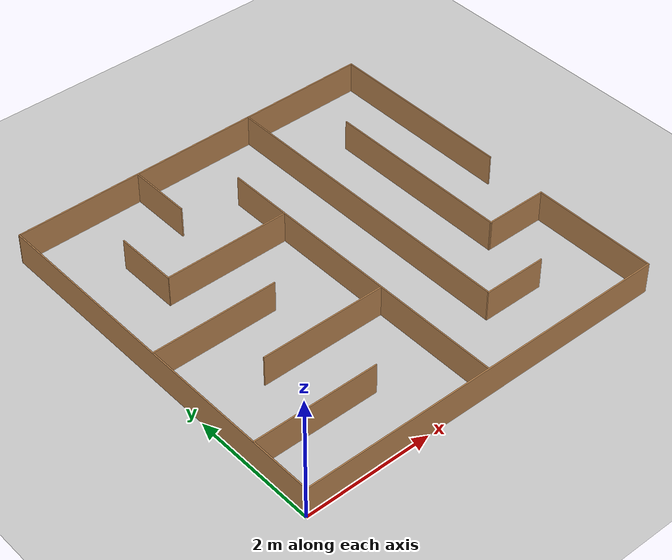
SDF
<sdf version="1.6">
 <world name="default">
  <light name="sun" type="directional">
   <pose>0 0 10 0 -0 0</pose>
   <diffuse>0.8 0.8 0.8 1</diffuse>
   <specular>0.2 0.2 0.2 1</specular>
   <attenuation>
    <range>1000</range>
    <constant>0.9</constant>
    <linear>0.01</linear>
    <quadratic>0.001</quadratic>
   </attenuation>
   <direction>-0.5 0.1 -0.9</direction>
  </light>
  <model name="ground_plane">
   <static>1</static>
   <link name="link">
    <collision name="collision">
     <geometry><plane><normal>0 0 1</normal><size>100 100</size></plane></geometry>
     <surface>
      <contact><collide_bitmask>65535</collide_bitmask></contact>
      <friction><ode><mu>100</mu><mu2>50</mu2></ode></friction>
     </surface>
    </collision>
    <visual name="visual">
     <cast_shadows>0</cast_shadows>
     <geometry><plane><normal>0 0 1</normal><size>100 100</size></plane></geometry>
     <material>
      <script><uri>file://media/materials/scripts/gazebo.material</uri><name>Gazebo/Grey</name></script>
     </material>
    </visual>
   </link>
  </model>
  <gravity>0 0 -9.8</gravity>
  <magnetic_field>6e-06 2.3e-05 -4.2e-05</magnetic_field>
  <atmosphere type="adiabatic"/>
  <physics name="default_physics" default="0" type="ode">
   <max_step_size>0.001</max_step_size>
   <real_time_factor>1</real_time_factor>
   <real_time_update_rate>1000</real_time_update_rate>
  </physics>
  <scene><ambient>0.4 0.4 0.4 1</ambient><background>0.7 0.7 0.7 1</background><shadows>1</shadows></scene>
  <audio><device>default</device></audio>
  <spherical_coordinates>
   <surface_model>EARTH_WGS84</surface_model>
   <latitude_deg>0</latitude_deg>
   <longitude_deg>0</longitude_deg>
   <elevation>0</elevation>
   <heading_deg>0</heading_deg>
  </spherical_coordinates>
  <model name="Circuit1v2">
   <pose>3.02008 2.99844 0 0 -0 0</pose>
   <link name="Wall_0">
    <collision name="Wall_0_Collision">
     <geometry><box><size>6 0.02 0.5</size></box></geometry>
     <pose>0 0 0.25 0 -0 0</pose>
    </collision>
    <visual name="Wall_0_Visual">
     <pose>0 0 0.25 0 -0 0</pose>
     <geometry><box><size>6 0.02 0.5</size></box></geometry>
     <material>
      <script><uri>file://media/materials/scripts/gazebo.material</uri><name>Gazebo/Wood</name></script>
      <ambient>1 1 1 1</ambient>
     </material>
     <meta><layer>0</layer></meta>
    </visual>
    <pose>-0.00811 -2.99606 0 0 -0 0</pose>
   </link>
   <link name="Wall_10">
    <collision name="Wall_10_Collision">
     <geometry><box><size>2 0.02 0.5</size></box></geometry>
     <pose>0 0 0.25 0 -0 0</pose>
    </collision>
    <visual name="Wall_10_Visual">
     <pose>0 0 0.25 0 -0 0</pose>
     <geometry><box><size>2 0.02 0.5</size></box></geometry>
     <material>
      <script><uri>file://media/materials/scripts/gazebo.material</uri><name>Gazebo/Wood</name></script>
      <ambient>1 1 1 1</ambient>
     </material>
     <meta><layer>0</layer></meta>
    </visual>
    <pose>-1.00295 0.987782 0 0 -0 0</pose>
   </link>
   <link name="Wall_12">
    <collision name="Wall_12_Collision">
     <geometry><box><size>2 0.02 0.5</size></box></geometry>
     <pose>0 0 0.25 0 -0 0</pose>
    </collision>
    <visual name="Wall_12_Visual">
     <pose>0 0 0.25 0 -0 0</pose>
     <geometry><box><size>2 0.02 0.5</size></box></geometry>
     <material>
      <script><uri>file://media/materials/scripts/gazebo.material</uri><name>Gazebo/Wood</name></script>
      <ambient>1 1 1 1</ambient>
     </material>
     <meta><layer>0</layer></meta>
    </visual>
    <pose>-1.99929 -0.00477 0 0 -0 0</pose>
   </link>
   <link name="Wall_14">
    <collision name="Wall_14_Collision">
     <geometry><box><size>2 0.02 0.5</size></box></geometry>
     <pose>0 0 0.25 0 -0 0</pose>
    </collision>
    <visual name="Wall_14_Visual">
     <pose>0 0 0.25 0 -0 0</pose>
     <geometry><box><size>2 0.02 0.5</size></box></geometry>
     <material>
      <script><uri>file://media/materials/scripts/gazebo.material</uri><name>Gazebo/Wood</name></script>
      <ambient>1 1 1 1</ambient>
     </material>
     <meta><layer>0</layer></meta>
    </visual>
    <pose>-1.00129 -0.989895 0 0 -0 0</pose>
   </link>
   <link name="Wall_16">
    <collision name="Wall_16_Collision">
     <geometry><box><size>2 0.02 0.5</size></box></geometry>
     <pose>0 0 0.25 0 -0 0</pose>
    </collision>
    <visual name="Wall_16_Visual">
     <pose>0 0 0.25 0 -0 0</pose>
     <geometry><box><size>2 0.02 0.5</size></box></geometry>
     <material>
      <script><uri>file://media/materials/scripts/gazebo.material</uri><name>Gazebo/Wood</name></script>
      <ambient>1 1 1 1</ambient>
     </material>
     <meta><layer>0</layer></meta>
    </visual>
    <pose>-2.00609 -2.01336 0 0 -0 0</pose>
   </link>
   <link name="Wall_18">
    <collision name="Wall_18_Collision">
     <geometry><box><size>5 0.02 0.5</size></box></geometry>
     <pose>0 0 0.25 0 -0 0</pose>
    </collision>
    <visual name="Wall_18_Visual">
     <pose>0 0 0.25 0 -0 0</pose>
     <geometry><box><size>5 0.02 0.5</size></box></geometry>
     <material>
      <script><uri>file://media/materials/scripts/gazebo.material</uri><name>Gazebo/Wood</name></script>
      <ambient>1 1 1 1</ambient>
     </material>
     <meta><layer>0</layer></meta>
    </visual>
    <pose>0.00254 -0.488759 0 0 -0 -1.5708</pose>
   </link>
   <link name="Wall_2">
    <collision name="Wall_2_Collision">
     <geometry><box><size>6 0.02 0.5</size></box></geometry>
     <pose>0 0 0.25 0 -0 0</pose>
    </collision>
    <visual name="Wall_2_Visual">
     <pose>0 0 0.25 0 -0 0</pose>
     <geometry><box><size>6 0.02 0.5</size></box></geometry>
     <material>
      <script><uri>file://media/materials/scripts/gazebo.material</uri><name>Gazebo/Wood</name></script>
      <ambient>1 1 1 1</ambient>
     </material>
     <meta><layer>0</layer></meta>
    </visual>
    <pose>-3.00346 -0.004559 0 0 -0 -1.5708</pose>
   </link>
   <link name="Wall_20">
    <collision name="Wall_20_Collision">
     <geometry><box><size>1 0.02 0.5</size></box></geometry>
     <pose>0 0 0.25 0 -0 0</pose>
    </collision>
    <visual name="Wall_20_Visual">
     <pose>0 0 0.25 0 -0 0</pose>
     <geometry><box><size>1 0.02 0.5</size></box></geometry>
     <material>
      <script><uri>file://media/materials/scripts/gazebo.material</uri><name>Gazebo/Wood</name></script>
      <ambient>1 1 1 1</ambient>
     </material>
     <meta><layer>0</layer></meta>
    </visual>
    <pose>-2.00285 1.47817 0 0 -0 -1.5708</pose>
   </link>
   <link name="Wall_22">
    <collision name="Wall_22_Collision">
     <geometry><box><size>1 0.02 0.5</size></box></geometry>
     <pose>0 0 0.25 0 -0 0</pose>
    </collision>
    <visual name="Wall_22_Visual">
     <pose>0 0 0.25 0 -0 0</pose>
     <geometry><box><size>1 0.02 0.5</size></box></geometry>
     <material>
      <script><uri>file://media/materials/scripts/gazebo.material</uri><name>Gazebo/Wood</name></script>
      <ambient>1 1 1 1</ambient>
     </material>
     <meta><layer>0</layer></meta>
    </visual>
    <pose>-1.01127 2.48672 0 0 -0 -1.5708</pose>
   </link>
   <link name="Wall_24">
    <collision name="Wall_24_Collision">
     <geometry><box><size>5 0.02 0.5</size></box></geometry>
     <pose>0 0 0.25 0 -0 0</pose>
    </collision>
    <visual name="Wall_24_Visual">
     <pose>0 0 0.25 0 -0 0</pose>
     <geometry><box><size>5 0.02 0.5</size></box></geometry>
     <material>
      <script><uri>file://media/materials/scripts/gazebo.material</uri><name>Gazebo/Wood</name></script>
      <ambient>1 1 1 1</ambient>
     </material>
     <meta><layer>0</layer></meta>
    </visual>
    <pose>0.989266 0.499882 0 0 -0 -1.5708</pose>
   </link>
   <link name="Wall_26">
    <collision name="Wall_26_Collision">
     <geometry><box><size>1 0.02 0.5</size></box></geometry>
     <pose>0 0 0.25 0 -0 0</pose>
    </collision>
    <visual name="Wall_26_Visual">
     <pose>0 0 0.25 0 -0 0</pose>
     <geometry><box><size>1 0.02 0.5</size></box></geometry>
     <material>
      <script><uri>file://media/materials/scripts/gazebo.material</uri><name>Gazebo/Wood</name></script>
      <ambient>1 1 1 1</ambient>
     </material>
     <meta><layer>0</layer></meta>
    </visual>
    <pose>1.47911 -1.99038 0 0 -0 0</pose>
   </link>
   <link name="Wall_28">
    <collision name="Wall_28_Collision">
     <geometry><box><size>1 0.02 0.5</size></box></geometry>
     <pose>0 0 0.25 0 -0 0</pose>
    </collision>
    <visual name="Wall_28_Visual">
     <pose>0 0 0.25 0 -0 0</pose>
     <geometry><box><size>1 0.02 0.5</size></box></geometry>
     <material>
      <script><uri>file://media/materials/scripts/gazebo.material</uri><name>Gazebo/Wood</name></script>
      <ambient>1 1 1 1</ambient>
     </material>
     <meta><layer>0</layer></meta>
    </visual>
    <pose>2.49114 -1.01384 0 0 -0 0</pose>
   </link>
   <link name="Wall_30">
    <collision name="Wall_30_Collision">
     <geometry><box><size>3 0.02 0.5</size></box></geometry>
     <pose>0 0 0.25 0 -0 0</pose>
    </collision>
    <visual name="Wall_30_Visual">
     <pose>0 0 0.25 0 -0 0</pose>
     <geometry><box><size>3 0.02 0.5</size></box></geometry>
     <material>
      <script><uri>file://media/materials/scripts/gazebo.material</uri><name>Gazebo/Wood</name></script>
      <ambient>1 1 1 1</ambient>
     </material>
     <meta><layer>0</layer></meta>
    </visual>
    <pose>2.00189 0.475964 0 0 -0 -1.5708</pose>
   </link>
   <link name="Wall_4">
    <collision name="Wall_4_Collision">
     <geometry><box><size>6 0.02 0.5</size></box></geometry>
     <pose>0 0 0.25 0 -0 0</pose>
    </collision>
    <visual name="Wall_4_Visual">
     <pose>0 0 0.25 0 -0 0</pose>
     <geometry><box><size>6 0.02 0.5</size></box></geometry>
     <material>
      <script><uri>file://media/materials/scripts/gazebo.material</uri><name>Gazebo/Wood</name></script>
      <ambient>1 1 1 1</ambient>
     </material>
     <meta><layer>0</layer></meta>
    </visual>
    <pose>0.013461 2.99606 0 0 -0 0</pose>
   </link>
   <link name="Wall_6">
    <collision name="Wall_6_Collision">
     <geometry><box><size>3 0.02 0.5</size></box></geometry>
     <pose>0 0 0.25 0 -0 0</pose>
    </collision>
    <visual name="Wall_6_Visual">
     <pose>0 0 0.25 0 -0 0</pose>
     <geometry><box><size>3 0.02 0.5</size></box></geometry>
     <material>
      <script><uri>file://media/materials/scripts/gazebo.material</uri><name>Gazebo/Wood</name></script>
      <ambient>1 1 1 1</ambient>
     </material>
     <meta><layer>0</layer></meta>
    </visual>
    <pose>3.00336 1.50459 0 0 -0 -1.5708</pose>
   </link>
   <link name="Wall_8">
    <collision name="Wall_8_Collision">
     <geometry><box><size>2 0.02 0.5</size></box></geometry>
     <pose>0 0 0.25 0 -0 0</pose>
    </collision>
    <visual name="Wall_8_Visual">
     <pose>0 0 0.25 0 -0 0</pose>
     <geometry><box><size>2 0.02 0.5</size></box></geometry>
     <material>
      <script><uri>file://media/materials/scripts/gazebo.material</uri><name>Gazebo/Wood</name></script>
      <ambient>1 1 1 1</ambient>
     </material>
     <meta><layer>0</layer></meta>
    </visual>
    <pose>2.98179 -2.00557 0 0 -0 -1.5708</pose>
   </link>
   <static>1</static>
  </model>
  <model name="fixed">
   <pose>0.10702 5.99482 0 0 -0 0</pose>
   <link name="Wall_2">
    <collision name="Wall_2_Collision">
     <geometry><box><size>0.2 0.02 0.5</size></box></geometry>
     <pose>0 0 0.25 0 -0 0</pose>
    </collision>
    <visual name="Wall_2_Visual">
     <pose>0 0 0.25 0 -0 0</pose>
     <geometry><box><size>0.2 0.02 0.5</size></box></geometry>
     <material>
      <script><uri>file://media/materials/scripts/gazebo.material</uri><name>Gazebo/Wood</name></script>
      <ambient>1 1 1 1</ambient>
     </material>
     <meta><layer>0</layer></meta>
    </visual>
   </link>
   <static>1</static>
  </model>
 </world>
</sdf>
